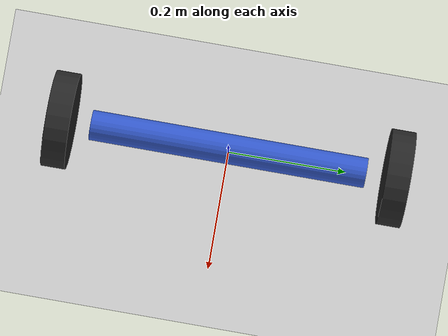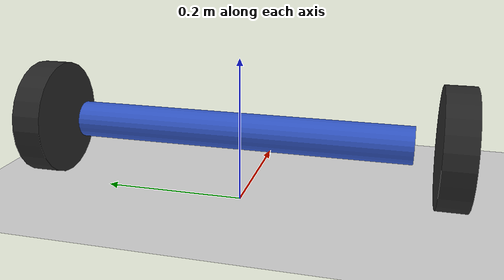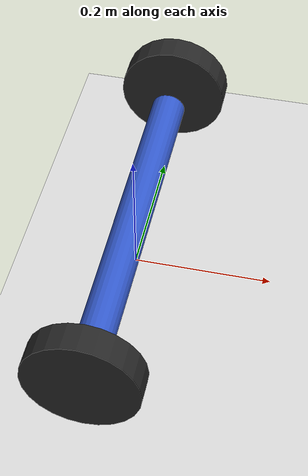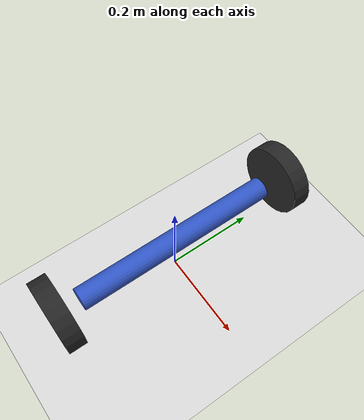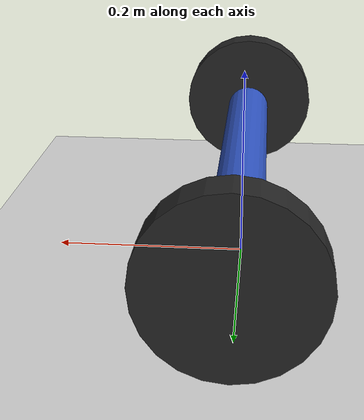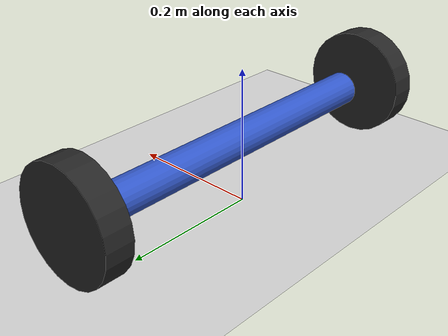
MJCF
<mujoco model="body_wheels">

    <worldbody>

        <light pos="0 0 2"
               dir="0 0 -1"/>

        <geom name="floor"
            type="plane"
            size="2 2 0.1"
            rgba="0.85 0.85 0.85 1"
        />

        <body pos="0 0 0.1">

            <geom
                type="cylinder"
                fromto="0 -0.23 0 0 0.23 0"
                size="0.025"
                rgba="0.20 0.35 0.80 1"
            />

            <geom name="left_wheel"
                type="cylinder"
                pos="0 0.28 0"
                euler="90 0 0"
                size="0.08 0.02"
                rgba="0.15 0.15 0.15 1"
            />

            <geom name="right_wheel"
                type="cylinder"
                pos="0 -0.28 0"
                euler="90 0 0"
                size="0.08 0.02"
                rgba="0.15 0.15 0.15 1"
            />

        </body>

    </worldbody>

</mujoco>
